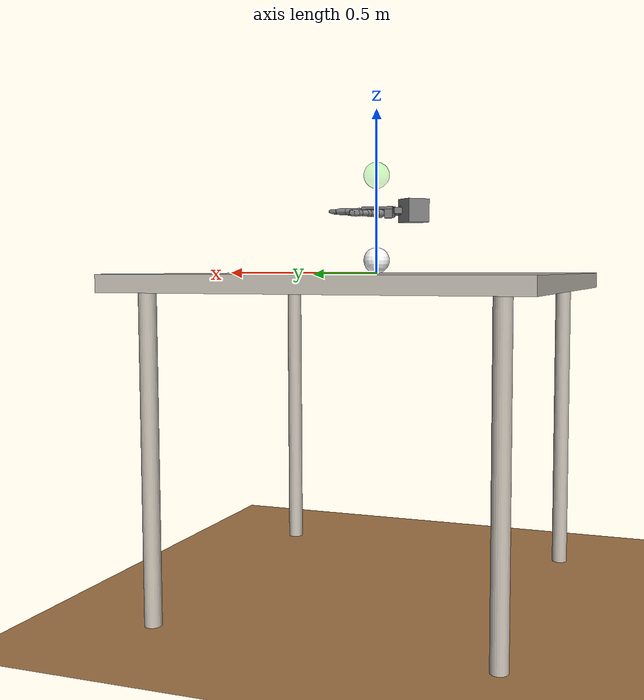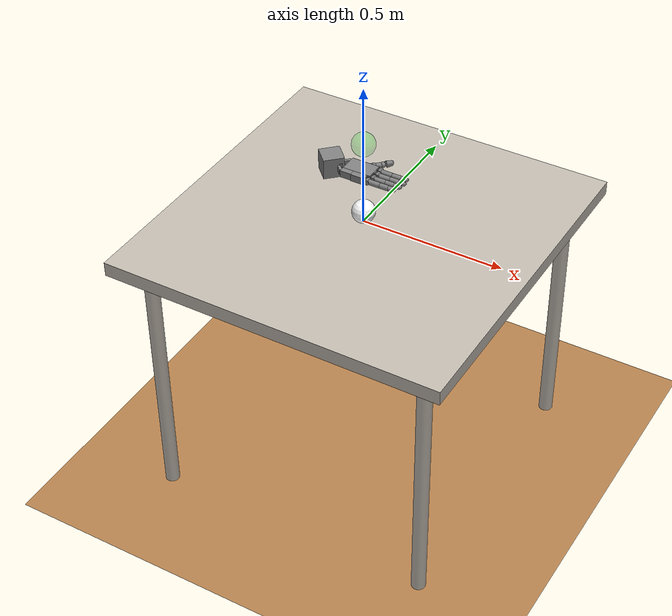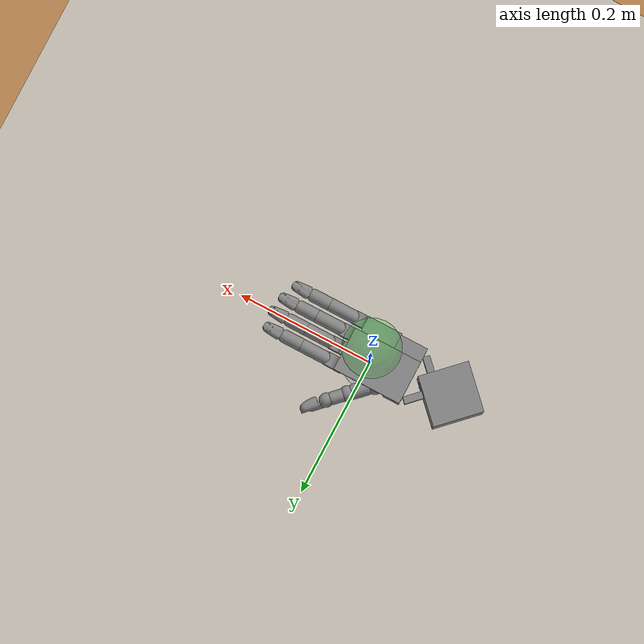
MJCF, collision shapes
<mujoco model="table_test">
  <asset>

    <!-- BACKGROUND -->
    <texture builtin="gradient" height="256" rgb1=".9 .9 1." rgb2=".2 .3 .4" type="skybox" width="256"/>

    <!-- FLOOR -->
    <texture file="../textures/wood-tiles.png" type="2d" name="texplane"/>
    <material name="floorplane" reflectance="0.01" shininess="0.0" specular="0.0" texrepeat="2 2" texture="texplane" texuniform="true"/>

    <!-- TABLE -->
    <texture file="../textures/ceramic.png" type="cube" name="tex-ceramic"/>
    <material name="table_ceramic" reflectance="0.0" shininess="0.0" specular="0.2" texrepeat="1 1" texture="tex-ceramic" />

    <!-- TABLE LEG -->
    <texture file="../textures/steel-brushed.png" type="cube" name="tex-steel-brushed"/>
    <material name="table_legs_metal" reflectance="0.8" shininess="0.8" texrepeat="1 1" texture="tex-steel-brushed" />
  </asset>

  <!-- WORLD -->
  <worldbody>
    <!-- GLOBAL LIGHT -->
    <light name="light1" directional="false" diffuse="0.8 0.8 0.8" specular="0.3 0.3 0.3" pos="1 1 4" dir="0 -0.15 -1" castshadow="false"/>
    <light name="light2" directional="false" diffuse="0.8 0.8 0.8" specular="0.3 0.3 0.3" pos="-3 -3 4" dir="0 -0.15 -1" castshadow="false"/>

    <!-- GLOBAL CAMERA -->
    <camera name="zeroview" mode="fixed" pos="0 0 2" quat="1 0 0 0"/>
    <camera name="frontview" mode="fixed" pos="1 0 1" quat="0.65 0.2705981 0.2705981 0.6532815"/>
    <camera name="backview" mode="fixed" pos="0 0.8 1.2" quat="0 0 0.2815 0.9595"/>
    <camera name="sideview" mode="fixed" pos="-1.3 -0.6 0.5" quat=" 0.6781121 0.5164697 -0.3290275 -0.4064037"/>

    <!-- FLOOR -->
    <geom name="floor" size="1.5 1.5 0.125" pos="0 0 -1" type="plane" contype="1" conaffinity="1" material="floorplane"/>

    <!-- TABLE -->
    <body name="table" pos="0 0 -0.025" >
      <geom name="table_plane" pos="0 0 0" size="0.6 0.6 0.025" type="box" contype="1" conaffinity="1" material="table_ceramic"/>
      <geom name="table_leg1" pos="0.5 0.5 -0.4875" size="0.025 0.4875" type="cylinder" contype="0" conaffinity="0" material="table_legs_metal"/>
      <geom name="table_leg2" pos="0.5 -0.5 -0.4875" size="0.025 0.4875" type="cylinder" contype="0" conaffinity="0" material="table_legs_metal"/>
      <geom name="table_leg3" pos="-0.5 0.5 -0.4875" size="0.025 0.4875" type="cylinder" contype="0" conaffinity="0" material="table_legs_metal"/>
      <geom name="table_leg4" pos="-0.5 -0.5 -0.4875" size="0.025 0.4875" type="cylinder" contype="0" conaffinity="0" material="table_legs_metal"/>
    </body>

    <!-- TARGET -->
    <body name="target" pos="0 0 0.3" quat="1 0 0 0" >
      <geom name="geom_target" type="sphere" size="0.04" contype="0" conaffinity="0" rgba="0 1 0 0.125"/>
    </body>

    <!-- OBJECT -->
    <body name="object" pos="0 0 0.04" quat="1 0 0 0" >
      <freejoint/>
      <geom name="geom_object" type="sphere" size="0.04" contype="1" conaffinity="1" rgba="1 1 1 1"/>
    </body>
  </worldbody>

  <contact>
    <pair geom1="table_plane" geom2="geom_object"/>
    <pair geom1="table_plane" geom2="geom_target"/>
    <pair geom1="geom_target" geom2="geom_object"/>
  </contact>

  <!-- HAND -->
  <include file="right_hand.xml"/>
</mujoco>

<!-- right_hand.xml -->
<mujoco model="right_shadow_hand">
  <compiler angle="radian" meshdir="assets" autolimits="true"/>

  <option impratio="10" iterations="1" ls_iterations="4" timestep="0.001">
    <flag eulerdamp="disable"/>
  </option>

  <custom>
    <numeric data="15" name="max_contact_points"/>
    <numeric data="15" name="max_geom_pairs"/>
  </custom>

  <default>
    <default class="right_hand">
      <mesh scale="0.001 0.001 0.001"/>
      <joint axis="1 0 0" damping="0.05" armature="0.0002"/>
      <position forcerange="-1 1"/>

      <default class="arm">
        <joint pos="0 0 0" limited="true" margin="0.01" armature="0.001"/>
        <default class="arm_translation_x">
          <joint type="slide" axis="1 0 0" range="-0.5 0.5" damping="20"/>
          <position kp="500" ctrlrange="-0.5 0.5" forcerange="-10 10"/>
        </default>
        <default class="arm_translation_y">
          <joint type="slide" axis="0 1 0" range="-0.15 0.2" damping="20"/>
          <position kp="500" ctrlrange="-0.15 0.2" forcerange="0 60"/>
        </default>
        <default class="arm_translation_z">
          <joint type="slide" axis="0 0 1" range="-0.5 0.5" damping="20"/>
          <position kp="500" ctrlrange="-0.5 0.5" forcerange="-10 10"/>
        </default>
        <default class="arm_rotation_x">
          <joint axis="1 0 0" range="-0.75 0.75" damping="10"/>
          <position kp="500" ctrlrange="-0.75 0.75" forcerange="-10 10"/>
        </default>
        <default class="arm_rotation_y">
          <joint axis="0 1 0" range="-0.75 0.75" damping="10"/>
          <position kp="500" ctrlrange="-0.75 0.75" forcerange="-10 10"/>
        </default>
        <default class="arm_rotation_z">
          <joint axis="0 0 1" range="-0.75 0.75" damping="10"/>
          <position kp="500" ctrlrange="-0.75 0.75" forcerange="-10 10"/>
        </default>
      </default>

      <default class="wrist">
        <joint damping="0.5"/>
        <default class="wrist_y">
          <joint axis="0 1 0" range="-0.523599 0.174533"/>
          <position kp="10" ctrlrange="-0.523599 0.174533" forcerange="-10 10"/>
        </default>
        <default class="wrist_x">
          <joint range="-0.698132 0.488692"/>
          <position kp="8" ctrlrange="-0.698132 0.488692" forcerange="-5 5"/>
        </default>
      </default>

      <default class="thumb">
        <default class="thbase">
          <joint axis="0 0 -1" range="-1.0472 1.0472"/>
          <position kp="0.4" ctrlrange="-1.0472 1.0472" forcerange="-3 3"/>
        </default>
        <default class="thproximal">
          <joint range="0 1.22173"/>
          <position ctrlrange="0 1.22173" forcerange="-2 2"/>
        </default>
        <default class="thhub">
          <joint range="-0.20944 0.20944"/>
          <position kp="0.5" ctrlrange="-0.20944 0.20944"/>
        </default>
        <default class="thmiddle">
          <joint axis="0 -1 0" range="-0.698132 0.698132"/>
          <position kp="1.5" ctrlrange="-0.698132 0.698132"/>
        </default>
        <default class="thdistal">
          <joint range="-0.261799 1.5708"/>
          <position ctrlrange="-0.261799 1.5708"/>
        </default>
      </default>

      <default class="metacarpal">
        <joint axis="0.573576 0 0.819152" range="0 0.785398"/>
        <position ctrlrange="0 0.785398"/>
      </default>
      <default class="knuckle">
        <joint axis="0 -1 0" range="-0.349066 0.349066"/>
        <position ctrlrange="-0.349066 0.349066"/>
      </default>
      <default class="proximal">
        <joint range="-0.261799 1.5708"/>
        <position ctrlrange="-0.261799 1.5708"/>
      </default>
      <default class="middle_distal">
        <joint range="0 1.5708"/>
        <position kp="0.5" ctrlrange="0 3.1415"/>
      </default>

      <default class="plastic">
        <geom solimp="0.5 0.99 0.0001" solref="0.005 1"/>
        <default class="plastic_visual">
          <geom type="mesh" material="black" contype="0" conaffinity="0" group="2"/>
        </default>
        <default class="plastic_collision">
          <geom group="3" contype="1" conaffinity="1"/>
        </default>
      </default>
    </default>
  </default>

  <asset>
    <material name="black" specular="0.5" shininess="0.25" rgba="0.16355 0.16355 0.16355 1"/>
    <material name="gray" specular="0.0" shininess="0.25" rgba="0.80848 0.80848 0.80848 1"/>
    <material name="metallic" specular="0" shininess="0.25" rgba="0.9 0.9 0.9 1"/>

    <mesh class="right_hand" file="forearm_0.obj"/>
    <mesh class="right_hand" file="forearm_1.obj"/>
    <mesh class="right_hand" file="forearm_collision.obj"/>
    <mesh class="right_hand" file="wrist.obj"/>
    <mesh class="right_hand" file="palm.obj"/>
    <mesh class="right_hand" file="f_knuckle.obj"/>
    <mesh class="right_hand" file="f_proximal.obj"/>
    <mesh class="right_hand" file="f_middle.obj"/>
    <mesh class="right_hand" file="f_distal_pst.obj"/>
    <mesh class="right_hand" file="f_distal_pst_214.obj"/>
    <mesh class="right_hand" file="lf_metacarpal.obj"/>
    <mesh class="right_hand" file="th_proximal.obj"/>
    <mesh class="right_hand" file="th_middle.obj"/>
    <mesh class="right_hand" file="th_distal_pst.obj"/>
    <mesh class="right_hand" file="th_distal_pst_190.obj"/>
  </asset>

  <worldbody>
    <body name="rh_forearm" childclass="right_hand" pos="-0.3 0.0 0.2" quat="0.5 0.5 0.5 0.5">
      <inertial mass="3" pos="0 0 0.19" diaginertia="0.0138 0.0138 0.00744"/>
      <joint class="arm_translation_x" name="rh_ARTx"/>
      <joint class="arm_translation_y" name="rh_ARTy"/>
      <joint class="arm_translation_z" name="rh_ARTz"/>
      <joint class="arm_rotation_x" name="rh_ARRx"/>
      <joint class="arm_rotation_y" name="rh_ARRy"/>
      <joint class="arm_rotation_z" name="rh_ARRz"/>
      <geom class="plastic_visual" mesh="forearm_0" material="gray"/>
      <geom class="plastic_visual" mesh="forearm_1"/>
      <geom class="plastic_collision" type="mesh" mesh="forearm_collision" conaffinity="0" contype="0"/>
      <geom class="plastic_collision" size="0.035 0.035 0.035" pos="0 -0.01 0.181" quat="0.924909 0 0.380188 0"
        type="box" conaffinity="0"/>
      <body name="rh_wrist" pos="0 -0.01 0.21301">
        <inertial mass="0.1" pos="0 0 0.029" quat="0.5 0.5 0.5 0.5" diaginertia="6.4e-05 4.38e-05 3.5e-05"/>
        <joint class="wrist_y" name="rh_WRJ2"/>
        <geom class="plastic_visual" mesh="wrist" material="metallic"/>
        <geom size="0.0135 0.015" quat="0.499998 0.5 0.5 -0.500002" type="cylinder" class="plastic_collision" conaffinity="0" contype="0"/>
        <geom size="0.011 0.005" pos="-0.026 0 0.034" quat="1 0 1 0" type="cylinder" class="plastic_collision" conaffinity="0" contype="0"/>
        <geom size="0.011 0.005" pos="0.031 0 0.034" quat="1 0 1 0" type="cylinder" class="plastic_collision" conaffinity="0" contype="0"/>
        <geom size="0.0135 0.009 0.005" pos="-0.021 0 0.011" quat="0.923879 0 0.382684 0" type="box"
          class="plastic_collision" conaffinity="0"/>
        <geom size="0.0135 0.009 0.005" pos="0.026 0 0.01" quat="0.923879 0 -0.382684 0" type="box"
          class="plastic_collision" conaffinity="0"/>
        <body name="rh_palm" pos="0 0 0.034">
          <inertial mass="0.3" pos="0 0 0.035" quat="1 0 0 1" diaginertia="0.0005287 0.0003581 0.000191"/>
          <joint class="wrist_x" name="rh_WRJ1"/>
          <site name="grasp_site" pos="0 -.035 0.09" group="4"/>
          <geom class="plastic_visual" mesh="palm"/>
          <geom size="0.031 0.0035 0.049" pos="0.011 0.0085 0.038" type="box" class="plastic_collision" conaffinity="2"/>
          <geom size="0.018 0.0085 0.049" pos="-0.002 -0.0035 0.038" type="box" class="plastic_collision" conaffinity="2"/>
          <geom size="0.013 0.0085 0.005" pos="0.029 -0.0035 0.082" type="box" class="plastic_collision" conaffinity="2"/>
          <geom size="0.013 0.007 0.009" pos="0.0265 -0.001 0.07" quat="0.987241 0.0990545 0.0124467 0.124052"
            type="box" class="plastic_collision" conaffinity="2"/>
          <geom size="0.0105 0.0135 0.012" pos="0.0315 -0.0085 0.001" type="box" class="plastic_collision" conaffinity="2"/>
          <geom size="0.011 0.0025 0.015" pos="0.0125 -0.015 0.004" quat="0.971338 0 0 -0.237703" type="box"
            class="plastic_collision" conaffinity="2"/>
          <geom size="0.009 0.012 0.002" pos="0.011 0 0.089" type="box" class="plastic_collision" conaffinity="2"/>
          <geom size="0.01 0.012 0.02" pos="-0.03 0 0.009" type="box" class="plastic_collision" conaffinity="2"/>
          <body name="rh_ffknuckle" pos="0.033 0 0.095">
            <inertial mass="0.008" pos="0 0 0" quat="0.5 0.5 -0.5 0.5" diaginertia="3.2e-07 2.6e-07 2.6e-07"/>
            <joint name="rh_FFJ4" class="knuckle"/>
            <geom pos="0 0 0.0005" class="plastic_visual" mesh="f_knuckle" material="metallic"/>
            <geom size="0.009 0.009" quat="1 0 1 0" type="cylinder" class="plastic_collision" conaffinity="0" contype="0"/>
            <body name="rh_ffproximal">
              <inertial mass="0.03" pos="0 0 0.0225" quat="1 0 0 1" diaginertia="1e-05 9.8e-06 1.8e-06"/>
              <joint name="rh_FFJ3" class="proximal"/>
              <geom class="plastic_visual" mesh="f_proximal"/>
              <geom size="0.009 0.02" pos="0 0 0.025" type="capsule" class="plastic_collision"/>
              <body name="rh_ffmiddle" pos="0 0 0.045">
                <inertial mass="0.017" pos="0 0 0.0125" quat="1 0 0 1" diaginertia="2.7e-06 2.6e-06 8.7e-07"/>
                <joint name="rh_FFJ2" class="middle_distal"/>
                <geom class="plastic_visual" mesh="f_middle"/>
                <geom size="0.009 0.0125" pos="0 0 0.0125" type="capsule" class="plastic_collision"/>
                <body name="rh_ffdistal" pos="0 0 0.025">
                  <inertial mass="0.013" pos="0 0 0.0130769" quat="1 0 0 1"
                    diaginertia="1.28092e-06 1.12092e-06 5.3e-07"/>
                  <joint name="rh_FFJ1" class="middle_distal"/>
                  <geom class="plastic_visual" mesh="f_distal_pst"/>
                  <geom class="plastic_collision" type="mesh" mesh="f_distal_pst_214" contype="0" conaffinity="2"/>
                </body>
              </body>
            </body>
          </body>
          <body name="rh_mfknuckle" pos="0.011 0 0.099">
            <inertial mass="0.008" pos="0 0 0" quat="0.5 0.5 -0.5 0.5" diaginertia="3.2e-07 2.6e-07 2.6e-07"/>
            <joint name="rh_MFJ4" class="knuckle"/>
            <geom pos="0 0 0.0005" class="plastic_visual" mesh="f_knuckle" material="metallic"/>
            <geom size="0.009 0.009" quat="1 0 1 0" type="cylinder" class="plastic_collision" conaffinity="0" contype="0"/>
            <body name="rh_mfproximal">
              <inertial mass="0.03" pos="0 0 0.0225" quat="1 0 0 1" diaginertia="1e-05 9.8e-06 1.8e-06"/>
              <joint name="rh_MFJ3" class="proximal"/>
              <geom class="plastic_visual" mesh="f_proximal"/>
              <geom size="0.009 0.02" pos="0 0 0.025" type="capsule" class="plastic_collision"/>
              <body name="rh_mfmiddle" pos="0 0 0.045">
                <inertial mass="0.017" pos="0 0 0.0125" quat="1 0 0 1" diaginertia="2.7e-06 2.6e-06 8.7e-07"/>
                <joint name="rh_MFJ2" class="middle_distal"/>
                <geom class="plastic_visual" mesh="f_middle"/>
                <geom size="0.009 0.0125" pos="0 0 0.0125" type="capsule" class="plastic_collision"/>
                <body name="rh_mfdistal" pos="0 0 0.025">
                  <inertial mass="0.013" pos="0 0 0.0130769" quat="1 0 0 1"
                    diaginertia="1.28092e-06 1.12092e-06 5.3e-07"/>
                  <joint name="rh_MFJ1" class="middle_distal"/>
                  <geom class="plastic_visual" mesh="f_distal_pst"/>
                  <geom class="plastic_collision" type="mesh" mesh="f_distal_pst_214" contype="0" conaffinity="2"/>
                </body>
              </body>
            </body>
          </body>
          <body name="rh_rfknuckle" pos="-0.011 0 0.095">
            <inertial mass="0.008" pos="0 0 0" quat="0.5 0.5 -0.5 0.5" diaginertia="3.2e-07 2.6e-07 2.6e-07"/>
            <joint name="rh_RFJ4" class="knuckle" axis="0 1 0"/>
            <geom pos="0 0 0.0005" class="plastic_visual" mesh="f_knuckle" material="metallic"/>
            <geom size="0.009 0.009" quat="1 0 1 0" type="cylinder" class="plastic_collision" conaffinity="0" contype="0"/>
            <body name="rh_rfproximal">
              <inertial mass="0.03" pos="0 0 0.0225" quat="1 0 0 1" diaginertia="1e-05 9.8e-06 1.8e-06"/>
              <joint name="rh_RFJ3" class="proximal"/>
              <geom class="plastic_visual" mesh="f_proximal"/>
              <geom size="0.009 0.02" pos="0 0 0.025" type="capsule" class="plastic_collision"/>
              <body name="rh_rfmiddle" pos="0 0 0.045">
                <inertial mass="0.017" pos="0 0 0.0125" quat="1 0 0 1" diaginertia="2.7e-06 2.6e-06 8.7e-07"/>
                <joint name="rh_RFJ2" class="middle_distal"/>
                <geom class="plastic_visual" mesh="f_middle"/>
                <geom size="0.009 0.0125" pos="0 0 0.0125" type="capsule" class="plastic_collision"/>
                <body name="rh_rfdistal" pos="0 0 0.025">
                  <inertial mass="0.013" pos="0 0 0.0130769" quat="1 0 0 1"
                    diaginertia="1.28092e-06 1.12092e-06 5.3e-07"/>
                  <joint name="rh_RFJ1" class="middle_distal"/>
                  <geom class="plastic_visual" mesh="f_distal_pst"/>
                  <geom class="plastic_collision" type="mesh" mesh="f_distal_pst_214" contype="0" conaffinity="2"/>
                </body>
              </body>
            </body>
          </body>
          <body name="rh_lfmetacarpal" pos="-0.033 0 0.02071">
            <inertial mass="0.03" pos="0 0 0.04" quat="1 0 0 1" diaginertia="1.638e-05 1.45e-05 4.272e-06"/>
            <joint name="rh_LFJ5" class="metacarpal"/>
            <geom class="plastic_visual" mesh="lf_metacarpal"/>
            <geom size="0.011 0.012 0.025" pos="0.002 0 0.033" type="box" class="plastic_collision"/>
            <body name="rh_lfknuckle" pos="0 0 0.06579">
              <inertial mass="0.008" pos="0 0 0" quat="0.5 0.5 -0.5 0.5" diaginertia="3.2e-07 2.6e-07 2.6e-07"/>
              <joint name="rh_LFJ4" class="knuckle" axis="0 1 0"/>
              <geom pos="0 0 0.0005" class="plastic_visual" mesh="f_knuckle" material="metallic"/>
              <geom size="0.009 0.009" quat="1 0 1 0" type="cylinder" class="plastic_collision" conaffinity="0" contype="0"/>
              <body name="rh_lfproximal">
                <inertial mass="0.03" pos="0 0 0.0225" quat="1 0 0 1" diaginertia="1e-05 9.8e-06 1.8e-06"/>
                <joint name="rh_LFJ3" class="proximal"/>
                <geom class="plastic_visual" mesh="f_proximal"/>
                <geom size="0.009 0.02" pos="0 0 0.025" type="capsule" class="plastic_collision"/>
                <body name="rh_lfmiddle" pos="0 0 0.045">
                  <inertial mass="0.017" pos="0 0 0.0125" quat="1 0 0 1" diaginertia="2.7e-06 2.6e-06 8.7e-07"/>
                  <joint name="rh_LFJ2" class="middle_distal"/>
                  <geom class="plastic_visual" mesh="f_middle"/>
                  <geom size="0.009 0.0125" pos="0 0 0.0125" type="capsule" class="plastic_collision"/>
                  <body name="rh_lfdistal" pos="0 0 0.025">
                    <inertial mass="0.013" pos="0 0 0.0130769" quat="1 0 0 1"
                      diaginertia="1.28092e-06 1.12092e-06 5.3e-07"/>
                    <joint name="rh_LFJ1" class="middle_distal"/>
                    <geom class="plastic_visual" mesh="f_distal_pst"/>
                    <geom class="plastic_collision" type="mesh" mesh="f_distal_pst_214" contype="0" conaffinity="2"/>
                  </body>
                </body>
              </body>
            </body>
          </body>
          <body name="rh_thbase" pos="0.034 -0.00858 0.029" quat="0.92388 0 0.382683 0">
            <inertial mass="0.01" pos="0 0 0" diaginertia="1.6e-07 1.6e-07 1.6e-07"/>
            <joint name="rh_THJ5" class="thbase"/>
            <geom class="plastic_collision" size="0.013"/>
            <body name="rh_thproximal">
              <inertial mass="0.04" pos="0 0 0.019" diaginertia="1.36e-05 1.36e-05 3.13e-06"/>
              <joint name="rh_THJ4" class="thproximal"/>
              <geom class="plastic_visual" mesh="th_proximal"/>
              <geom class="plastic_collision" size="0.0105 0.009" pos="0 0 0.02" type="capsule"/>
              <body name="rh_thhub" pos="0 0 0.038">
                <inertial mass="0.005" pos="0 0 0" diaginertia="1e-06 1e-06 3e-07"/>
                <joint name="rh_THJ3" class="thhub"/>
                <geom size="0.011" class="plastic_collision"/>
                <body name="rh_thmiddle">
                  <inertial mass="0.02" pos="0 0 0.016" diaginertia="5.1e-06 5.1e-06 1.21e-06"/>
                  <joint name="rh_THJ2" class="thmiddle"/>
                  <geom class="plastic_visual" mesh="th_middle"/>
                  <geom size="0.009 0.009" pos="0 0 0.012" type="capsule" class="plastic_collision"/>
                  <geom size="0.01" pos="0 0 0.03" class="plastic_collision"/>
                  <body name="rh_thdistal" pos="0 0 0.032" quat="1 0 0 -1">
                    <inertial mass="0.017" pos="0 0 0.0145588" quat="1 0 0 1"
                      diaginertia="2.37794e-06 2.27794e-06 1e-06"/>
                    <joint name="rh_THJ1" class="thdistal"/>
                    <geom class="plastic_visual" mesh="th_distal_pst"/>
                    <geom class="plastic_collision" type="mesh" mesh="th_distal_pst_190" contype="0" conaffinity="2"/>
                  </body>
                </body>
              </body>
            </body>
          </body>
        </body>
      </body>
    </body>
  </worldbody>

  <contact>
    <exclude body1="rh_wrist" body2="rh_forearm"/>
    <exclude body1="rh_thproximal" body2="rh_thmiddle"/>
  </contact>

  <actuator>
    <position name="rh_A_ARTx" joint="rh_ARTx" class="arm_translation_x"/>
    <position name="rh_A_ARTy" joint="rh_ARTy" class="arm_translation_y"/>
    <position name="rh_A_ARTz" joint="rh_ARTz" class="arm_translation_z"/>
    <position name="rh_A_ARRx" joint="rh_ARRx" class="arm_rotation_x"/>
    <position name="rh_A_ARRy" joint="rh_ARRy" class="arm_rotation_y"/>
    <position name="rh_A_ARRz" joint="rh_ARRz" class="arm_rotation_z"/>
    <position name="rh_A_WRJ2" joint="rh_WRJ2" class="wrist_y"/>
    <position name="rh_A_WRJ1" joint="rh_WRJ1" class="wrist_x"/>
    <position name="rh_A_THJ5" joint="rh_THJ5" class="thbase"/>
    <position name="rh_A_THJ4" joint="rh_THJ4" class="thproximal"/>
    <position name="rh_A_THJ3" joint="rh_THJ3" class="thhub"/>
    <position name="rh_A_THJ2" joint="rh_THJ2" class="thmiddle"/>
    <position name="rh_A_THJ1" joint="rh_THJ1" class="thdistal"/>
    <position name="rh_A_FFJ4" joint="rh_FFJ4" class="knuckle"/>
    <position name="rh_A_FFJ3" joint="rh_FFJ3" class="proximal"/>
    <position name="rh_A_FFJ2" joint="rh_FFJ2" class="middle_distal"/>
    <position name="rh_A_FFJ1" joint="rh_FFJ1" class="middle_distal"/>
    <position name="rh_A_MFJ4" joint="rh_MFJ4" class="knuckle"/>
    <position name="rh_A_MFJ3" joint="rh_MFJ3" class="proximal"/>
    <position name="rh_A_MFJ2" joint="rh_MFJ2" class="middle_distal"/>
    <position name="rh_A_MFJ1" joint="rh_MFJ1" class="middle_distal"/>
    <position name="rh_A_RFJ4" joint="rh_RFJ4" class="knuckle"/>
    <position name="rh_A_RFJ3" joint="rh_RFJ3" class="proximal"/>
    <position name="rh_A_RFJ2" joint="rh_RFJ2" class="middle_distal"/>
    <position name="rh_A_RFJ1" joint="rh_RFJ1" class="middle_distal"/>
    <position name="rh_A_LFJ5" joint="rh_LFJ5" class="metacarpal"/>
    <position name="rh_A_LFJ4" joint="rh_LFJ4" class="knuckle"/>
    <position name="rh_A_LFJ3" joint="rh_LFJ3" class="proximal"/>
    <position name="rh_A_LFJ2" joint="rh_LFJ2" class="middle_distal"/>
    <position name="rh_A_LFJ1" joint="rh_LFJ1" class="middle_distal"/>
  </actuator>
</mujoco>
